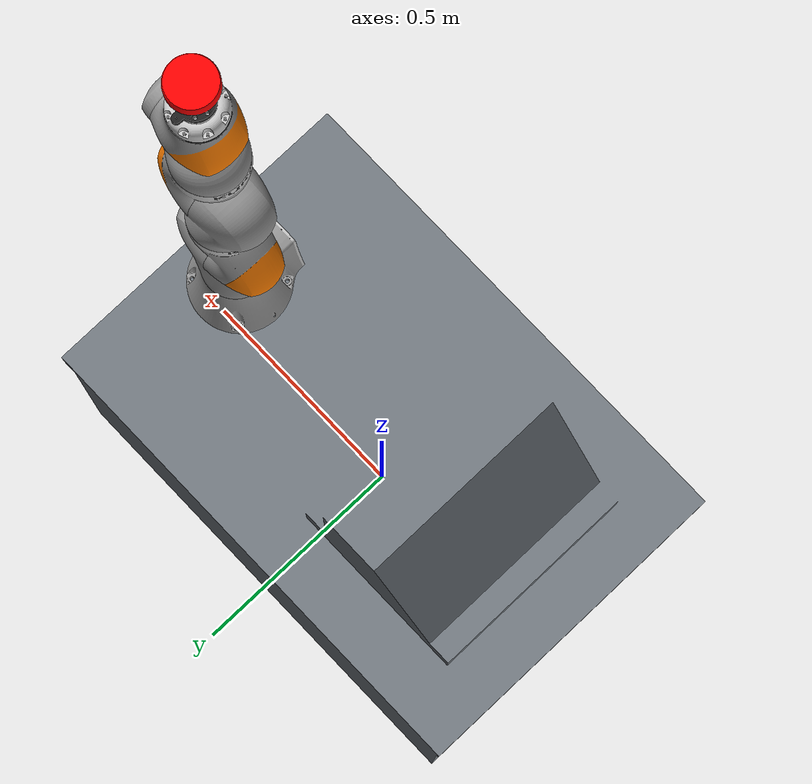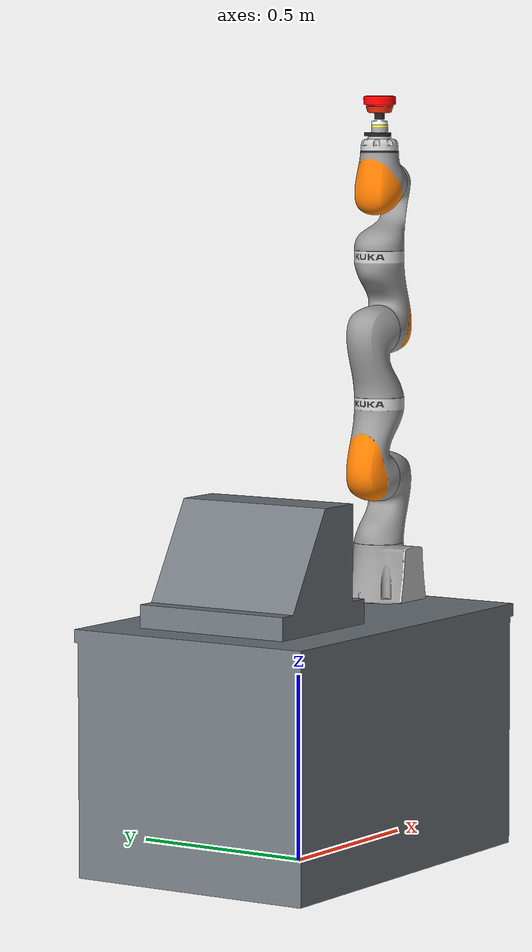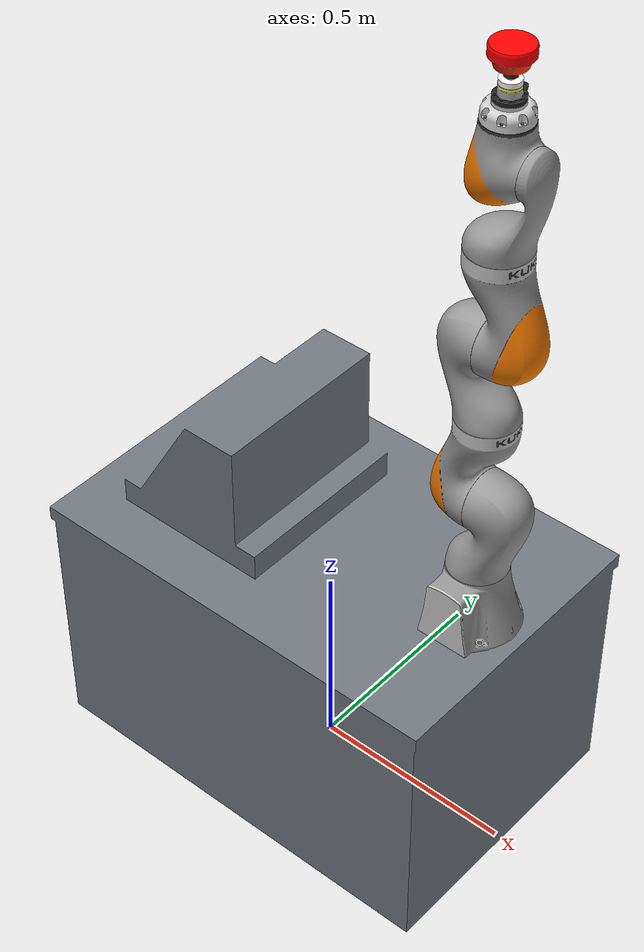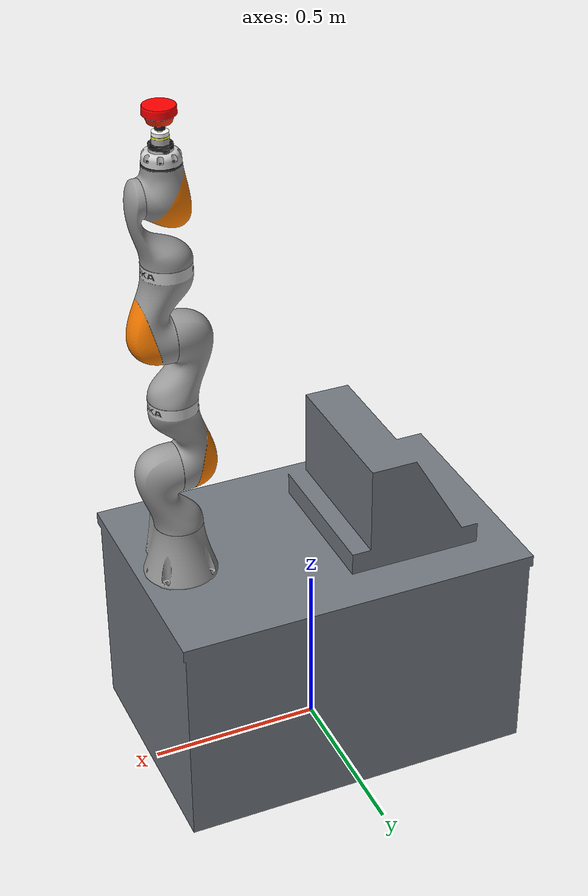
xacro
<?xml version="1.0" ?>
<robot name="iiwa7" xmlns:xacro="http://www.ros.org/wiki/xacro">

    <!-- caja, pasar a primitiva para la colision? ahorra computo creo-->
    <xacro:property name="base_mass" value="40.0" />
    <xacro:property name="robot_offset_x" value="0.40" />
    <xacro:property name="robot_offset_y" value="0.0" />
    <xacro:property name="base_ixx" value="5.333" />
    <xacro:property name="base_iyy" value="5.600" />
    <xacro:property name="base_izz" value="5.467" />

    <xacro:include
        filename="$(find lbr_description)/urdf/iiwa7/iiwa7.urdf.xacro"
    />
    <xacro:include filename="$(find lbr_description)/gazebo/lbr_gazebo.xacro" />
    <xacro:include
        filename="$(find lbr_description)/ros2_control/lbr_system_interface.xacro"
    />
    <xacro:include
        filename="$(find lbr_description)/models/ft_sensor/real_ft_sensor_macro.xacro"
    />
    <xacro:include filename="$(find lbr_description)/models/tool/tool.xacro" />

    <xacro:arg name="robot_name" default="lbr" />
    <xacro:arg name="mode" default="mock" />
    <xacro:arg
        name="joint_limits_path"
        default="$(find lbr_description)/urdf/iiwa7/joint_limits.yaml"
    />
    <xacro:arg
        name="system_config_path"
        default="$(find lbr_description)/ros2_control/lbr_system_config.yaml"
    />
    <xacro:arg
        name="initial_joint_positions_path"
        default="$(find lbr_description)/ros2_control/initial_joint_positions.yaml"
    />

    <xacro:macro
        name="ft_gazebo_plugin"
        params="ft_joint_name topic_name update_rate:='1000' noise_stddev_force:='0.01' noise_stddev_torque:='0.001'"
    >
        <gazebo reference="${ft_joint_name}">
            <preserveFixedJoint>true</preserveFixedJoint>
            <sensor name="ft_sensor" type="force_torque">
                <always_on>true</always_on>
                <update_rate>${update_rate}</update_rate>
                <visualize>false</visualize>
                <force_torque>
                    <frame>child</frame>
                    <measure_direction>child_to_parent</measure_direction>
                    <force>
                        <x><noise type="gaussian"><mean>0.0</mean><stddev
                                >${noise_stddev_force}</stddev></noise></x>
                        <y><noise type="gaussian"><mean>0.0</mean><stddev
                                >${noise_stddev_force}</stddev></noise></y>
                        <z><noise type="gaussian"><mean>0.0</mean><stddev
                                >${noise_stddev_force}</stddev></noise></z>
                    </force>
                    <torque>
                        <x><noise type="gaussian"><mean>0.0</mean><stddev
                                >${noise_stddev_torque}</stddev></noise></x>
                        <y><noise type="gaussian"><mean>0.0</mean><stddev
                                >${noise_stddev_torque}</stddev></noise></y>
                        <z><noise type="gaussian"><mean>0.0</mean><stddev
                                >${noise_stddev_torque}</stddev></noise></z>
                    </torque>
                </force_torque>
                <topic>${topic_name}</topic>
                <plugin
                    filename="gz-sim-forcetorque-system"
                    name="gz::sim::systems::ForceTorque"
                />
            </sensor>
        </gazebo>
    </xacro:macro>

    <link name="world" />

    <joint name="$(arg robot_name)_world_base_joint" type="fixed">
        <parent link="world" />
        <child link="$(arg robot_name)_base_link" />
        <origin xyz="0 0 0.660" rpy="0 0 0" />
    </joint>

    <link name="$(arg robot_name)_base_link">
        <inertial>
            <origin xyz="0 0 0" rpy="0 0 0" />
            <mass value="${base_mass}" />
            <inertia
                ixx="${base_ixx}"
                ixy="0.0"
                ixz="0.0"
                iyy="${base_iyy}"
                iyz="0.0"
                izz="${base_izz}"
            />
        </inertial>
        <visual>
            <origin xyz="0 0 0" rpy="0 0 0" />
            <geometry>
                <mesh
                    filename="package://lbr_description/meshes/iiwa7/carrito_azul/Cuerpo_carro_1.dae"
                />
            </geometry>
        </visual>
        <!-- caja simplificada para tratar de optimizar el codigo -->
        <!-- colisión de pantalla movida al modelo independiente screen_ghost -->
    </link>

    <joint name="$(arg robot_name)_base_robot_joint" type="fixed">
        <parent link="$(arg robot_name)_base_link" />
        <child link="$(arg robot_name)_link_0" />
        <origin xyz="${robot_offset_x} ${robot_offset_y} 0" rpy="0 0 ${pi/2}" />
    </joint>

    <xacro:lbr_gazebo robot_name="$(arg robot_name)" />

    <xacro:lbr_system_interface
        robot_name="$(arg robot_name)"
        mode="$(arg mode)"
        system_config_path="$(arg system_config_path)"
        initial_joint_positions_path="$(arg initial_joint_positions_path)"
    />

    <xacro:iiwa7
        robot_name="$(arg robot_name)"
        joint_limits_path="$(arg joint_limits_path)"
    />

    <!-- cadena: link_7 → brida_cam → ft45 → brida_ft → tool_body → sponge = TCP -->

    <xacro:brida_cam parent="$(arg robot_name)_link_7" name="brida_cam">
        <origin xyz="0 0 0.035" rpy="0 0 0" />
    </xacro:brida_cam>

    <xacro:ft45 parent="brida_cam_tip" name="ft45">
        <origin xyz="0 0 0" rpy="0 0 ${pi}" />
    </xacro:ft45>

    <!-- plugin FT sobre joint: brida_cam_tip_ft45_base_joint -->
    <xacro:ft_gazebo_plugin
        ft_joint_name="brida_cam_tip_ft45_base_joint"
        topic_name="ft_sensor/wrench"
        update_rate="200"
    /> <!-- bajado la frecuencia de actualizacion para optimizar, sin cambios -->

    <xacro:brida_ft parent="ft45_tip" name="brida_ft">
        <origin xyz="0 0 0" rpy="0 0 0" />
    </xacro:brida_ft>

    <xacro:repair_tool_iiwa name="tool_body" parent="brida_ft_tip">
        <origin xyz="0 0 0" rpy="0 0 0" />
    </xacro:repair_tool_iiwa>

    <xacro:repair_sponge_red name="tool" parent="tool_body_tip">
        <origin xyz="0 0 0" rpy="0 0 ${pi}" />
    </xacro:repair_sponge_red>

    <joint name="$(arg robot_name)_joint_ee" type="fixed">
        <parent link="tool_tip" />
        <child link="$(arg robot_name)_link_ee" />
        <origin xyz="0 0 0" rpy="0 0 0" />
    </joint>

    <link name="$(arg robot_name)_link_ee">
    </link>

    <!-- Brida cámara (extremo link_7) -->
    <gazebo reference="brida_cam_base">
        <kp>100000.0</kp>
        <kd>100.0</kd>
        <mu1>0.5</mu1>
        <mu2>0.3</mu2>
    </gazebo>

    <!-- Sensor FT45 -->
    <gazebo reference="ft45_base">
        <kp>100000.0</kp>
        <kd>100.0</kd>
        <mu1>0.5</mu1>
        <mu2>0.3</mu2>
    </gazebo>

    <!-- Brida FT -->
    <gazebo reference="brida_ft_base">
        <kp>100000.0</kp>
        <kd>100.0</kd>
        <mu1>0.5</mu1>
        <mu2>0.3</mu2>
    </gazebo>

    <!-- Tool body (base de la esponja) -->
    <gazebo reference="tool_body_base">
        <kp>100000.0</kp>
        <kd>100.0</kd>
        <mu1>0.5</mu1>
        <mu2>0.3</mu2>
    </gazebo>

    <!-- Esponja (tool): material blando, kp/kd más bajos para simular deformabilidad -->
    <gazebo reference="tool_base">
        <provideFeedback>true</provideFeedback>
        <kp>5000.0</kp>            <!-- stiffness bajo = esponja blanda -->
        <kd>50.0</kd>              <!-- damping moderado -->
        <mu1>1.0</mu1>             <!-- fricción alta esponja-pantalla -->
        <mu2>0.8</mu2>
        <maxVel>0.01</maxVel>
        <minDepth>0.0001</minDepth>
        <maxContacts>6</maxContacts>
    </gazebo>

</robot>

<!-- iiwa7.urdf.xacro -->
<robot xmlns:xacro="http://www.ros.org/wiki/xacro">
    <!-- robot as extracted via https://github.com/syuntoku14/fusion2urdf -->
    <xacro:macro
        name="iiwa7"
        params="robot_name:=^|lbr joint_limits_path:=^|'$(find lbr_description)/urdf/iiwa7/joint_limits.yaml'"
    >

        <!-- load joint limits via yaml -->
        <xacro:property
            name="joint_limits"
            value="${xacro.load_yaml(joint_limits_path)}"
        />

        <!-- constants -->
        <xacro:property name="PI" value="3.1415926535897931" />
        <xacro:property name="joint_damping" value="10.0" />
        <xacro:property name="joint_friction" value="0.1" />

        <!-- links and joints -->
        <link name="${robot_name}_link_0">
            <inertial>
                <origin rpy="0 0 0" xyz="-0.012857 0.0 0.069964" />
                <mass value="4.855658" />
                <inertia
                    ixx="0.017839"
                    ixy="0.0"
                    ixz="0.000781"
                    iyy="0.022294"
                    iyz="0.0"
                    izz="0.021334"
                />
            </inertial>
            <visual>
                <origin rpy="0 0 0" xyz="0 0 0" />
                <geometry>
                    <mesh
                        filename="package://lbr_description/meshes/iiwa7/visual/link_0.dae"
                    />
                </geometry>
            </visual>
            <collision>
                <origin rpy="0 0 0" xyz="0 0 0" />
                <geometry>
                    <mesh
                        filename="package://lbr_description/meshes/iiwa7/collision/link_0.stl"
                    />
                </geometry>
            </collision>
        </link>

        <joint name="${robot_name}_A1" type="revolute">
            <origin rpy="0 0 0" xyz="0.0 0.0 0.1475" />
            <parent link="${robot_name}_link_0" />
            <child link="${robot_name}_link_1" />
            <axis xyz="0.0 0.0 1.0" />
            <limit
                effort="${joint_limits['A1']['effort']}"
                lower="${joint_limits['A1']['lower'] * PI / 180}"
                upper="${joint_limits['A1']['upper'] * PI / 180}"
                velocity="${joint_limits['A1']['velocity'] * PI / 180}"
            />
            <safety_controller
                soft_lower_limit="${joint_limits['A1']['lower'] * PI / 180}"
                soft_upper_limit="${joint_limits['A1']['upper'] * PI / 180}"
                k_position="${joint_limits['A1']['velocity'] / joint_limits['A1']['safety_position_margin']}"
                k_velocity="${joint_limits['A1']['k_velocity']}"
            />
            <dynamics damping="${joint_damping}" friction="${joint_friction}" />
        </joint>

        <link name="${robot_name}_link_1">
            <inertial>
                <origin rpy="0 0 0" xyz="0.0 -0.034819 0.123299" />
                <mass value="3.394011" />
                <inertia
                    ixx="0.021383"
                    ixy="0.0"
                    ixz="0.0"
                    iyy="0.020403"
                    iyz="0.003797"
                    izz="0.007563"
                />
            </inertial>
            <visual>
                <origin rpy="0 0 0" xyz="0.0 0.0 -0.1475" />
                <geometry>
                    <mesh
                        filename="package://lbr_description/meshes/iiwa7/visual/link_1.dae"
                    />
                </geometry>
            </visual>
            <collision>
                <origin rpy="0 0 0" xyz="0.0 0.0 -0.1475" />
                <geometry>
                    <mesh
                        filename="package://lbr_description/meshes/iiwa7/collision/link_1.stl"
                    />
                </geometry>
            </collision>
        </link>

        <joint name="${robot_name}_A2" type="revolute">
            <origin rpy="0 0 0" xyz="0.0 -0.0105 0.1925" />
            <parent link="${robot_name}_link_1" />
            <child link="${robot_name}_link_2" />
            <axis xyz="0.0 1.0 0.0" />
            <limit
                effort="${joint_limits['A2']['effort']}"
                lower="${joint_limits['A2']['lower'] * PI / 180}"
                upper="${joint_limits['A2']['upper'] * PI / 180}"
                velocity="${joint_limits['A2']['velocity'] * PI / 180}"
            />
            <safety_controller
                soft_lower_limit="${joint_limits['A2']['lower'] * PI / 180}"
                soft_upper_limit="${joint_limits['A2']['upper'] * PI / 180}"
                k_position="${joint_limits['A2']['velocity'] / joint_limits['A2']['safety_position_margin']}"
                k_velocity="${joint_limits['A2']['k_velocity']}"
            />
            <dynamics damping="${joint_damping}" friction="${joint_friction}" />
        </joint>

        <link name="${robot_name}_link_2">
            <inertial>
                <origin rpy="0 0 0" xyz="0.0 0.039793 0.086944" />
                <mass value="4.031991" />
                <inertia
                    ixx="0.031697"
                    ixy="0.0"
                    ixz="0.0"
                    iyy="0.03008"
                    iyz="0.005889"
                    izz="0.009666"
                />
            </inertial>
            <visual>
                <origin rpy="0 0 0" xyz="0.0 0.0105 -0.34" />
                <geometry>
                    <mesh
                        filename="package://lbr_description/meshes/iiwa7/visual/link_2.dae"
                    />
                </geometry>
            </visual>
            <collision>
                <origin rpy="0 0 0" xyz="0.0 0.0105 -0.34" />
                <geometry>
                    <mesh
                        filename="package://lbr_description/meshes/iiwa7/collision/link_2.stl"
                    />
                </geometry>
            </collision>
        </link>

        <joint name="${robot_name}_A3" type="revolute">
            <origin rpy="0 0 0" xyz="0.0 0.0105 0.2075" />
            <parent link="${robot_name}_link_2" />
            <child link="${robot_name}_link_3" />
            <axis xyz="0.0 0.0 1.0" />
            <limit
                effort="${joint_limits['A3']['effort']}"
                lower="${joint_limits['A3']['lower'] * PI / 180}"
                upper="${joint_limits['A3']['upper'] * PI / 180}"
                velocity="${joint_limits['A3']['velocity'] * PI / 180}"
            />
            <safety_controller
                soft_lower_limit="${joint_limits['A3']['lower'] * PI / 180}"
                soft_upper_limit="${joint_limits['A3']['upper'] * PI / 180}"
                k_position="${joint_limits['A3']['velocity'] / joint_limits['A3']['safety_position_margin']}"
                k_velocity="${joint_limits['A3']['k_velocity']}"
            />
            <dynamics damping="${joint_damping}" friction="${joint_friction}" />
        </joint>

        <link name="${robot_name}_link_3">
            <inertial>
                <origin rpy="0 0 0" xyz="0.0 0.034819 0.123299" />
                <mass value="3.394011" />
                <inertia
                    ixx="0.021383"
                    ixy="0.0"
                    ixz="0.0"
                    iyy="0.020403"
                    iyz="-0.003797"
                    izz="0.007563"
                />
            </inertial>
            <visual>
                <origin rpy="0 0 0" xyz="0.0 0.0 -0.5475" />
                <geometry>
                    <mesh
                        filename="package://lbr_description/meshes/iiwa7/visual/link_3.dae"
                    />
                </geometry>
            </visual>
            <collision>
                <origin rpy="0 0 0" xyz="0.0 0.0 -0.5475" />
                <geometry>
                    <mesh
                        filename="package://lbr_description/meshes/iiwa7/collision/link_3.stl"
                    />
                </geometry>
            </collision>
        </link>

        <joint name="${robot_name}_A4" type="revolute">
            <origin rpy="0 0 0" xyz="0.0 0.0105 0.1925" />
            <parent link="${robot_name}_link_3" />
            <child link="${robot_name}_link_4" />
            <axis xyz="0.0 -1.0 0.0" />
            <limit
                effort="${joint_limits['A4']['effort']}"
                lower="${joint_limits['A4']['lower'] * PI / 180}"
                upper="${joint_limits['A4']['upper'] * PI / 180}"
                velocity="${joint_limits['A4']['velocity'] * PI / 180}"
            />
            <safety_controller
                soft_lower_limit="${joint_limits['A4']['lower'] * PI / 180}"
                soft_upper_limit="${joint_limits['A4']['upper'] * PI / 180}"
                k_position="${joint_limits['A4']['velocity'] / joint_limits['A4']['safety_position_margin']}"
                k_velocity="${joint_limits['A4']['k_velocity']}"
            />
            <dynamics damping="${joint_damping}" friction="${joint_friction}" />
        </joint>

        <link name="${robot_name}_link_4">
            <inertial>
                <origin rpy="0 0 0" xyz="0.0 -0.039793 0.086944" />
                <mass value="4.031989" />
                <inertia
                    ixx="0.031695"
                    ixy="0.0"
                    ixz="0.0"
                    iyy="0.030079"
                    iyz="-0.005889"
                    izz="0.009665"
                />
            </inertial>
            <visual>
                <origin rpy="0 0 0" xyz="0.0 -0.0105 -0.74" />
                <geometry>
                    <mesh
                        filename="package://lbr_description/meshes/iiwa7/visual/link_4.dae"
                    />
                </geometry>
            </visual>
            <collision>
                <origin rpy="0 0 0" xyz="0.0 -0.0105 -0.74" />
                <geometry>
                    <mesh
                        filename="package://lbr_description/meshes/iiwa7/collision/link_4.stl"
                    />
                </geometry>
            </collision>
        </link>

        <joint name="${robot_name}_A5" type="revolute">
            <origin rpy="0 0 0" xyz="0.0 -0.0105 0.2075" />
            <parent link="${robot_name}_link_4" />
            <child link="${robot_name}_link_5" />
            <axis xyz="0.0 0.0 1.0" />
            <limit
                effort="${joint_limits['A5']['effort']}"
                lower="${joint_limits['A5']['lower'] * PI / 180}"
                upper="${joint_limits['A5']['upper'] * PI / 180}"
                velocity="${joint_limits['A5']['velocity'] * PI / 180}"
            />
            <safety_controller
                soft_lower_limit="${joint_limits['A5']['lower'] * PI / 180}"
                soft_upper_limit="${joint_limits['A5']['upper'] * PI / 180}"
                k_position="${joint_limits['A5']['velocity'] / joint_limits['A5']['safety_position_margin']}"
                k_velocity="${joint_limits['A5']['k_velocity']}"
            />
            <dynamics damping="${joint_damping}" friction="${joint_friction}" />
        </joint>

        <link name="${robot_name}_link_5">
            <inertial>
                <origin rpy="0 0 0" xyz="0.0 -0.029824 0.076267" />
                <mass value="1.529239" />
                <inertia
                    ixx="0.008485"
                    ixy="0.0"
                    ixz="0.0"
                    iyy="0.007136"
                    iyz="0.002806"
                    izz="0.003848"
                />
            </inertial>
            <visual>
                <origin rpy="0 0 0" xyz="0.0 0.0 -0.9475" />
                <geometry>
                    <mesh
                        filename="package://lbr_description/meshes/iiwa7/visual/link_5.dae"
                    />
                </geometry>
            </visual>
            <collision>
                <origin rpy="0 0 0" xyz="0.0 0.0 -0.9475" />
                <geometry>
                    <mesh
                        filename="package://lbr_description/meshes/iiwa7/collision/link_5.stl"
                    />
                </geometry>
            </collision>
        </link>

        <joint name="${robot_name}_A6" type="revolute">
            <origin rpy="0 0 0" xyz="0.0 -0.0707 0.1925" />
            <parent link="${robot_name}_link_5" />
            <child link="${robot_name}_link_6" />
            <axis xyz="0.0 1.0 0.0" />
            <limit
                effort="${joint_limits['A6']['effort']}"
                lower="${joint_limits['A6']['lower'] * PI / 180}"
                upper="${joint_limits['A6']['upper'] * PI / 180}"
                velocity="${joint_limits['A6']['velocity'] * PI / 180}"
            />
            <safety_controller
                soft_lower_limit="${joint_limits['A6']['lower'] * PI / 180}"
                soft_upper_limit="${joint_limits['A6']['upper'] * PI / 180}"
                k_position="${joint_limits['A6']['velocity'] / joint_limits['A6']['safety_position_margin']}"
                k_velocity="${joint_limits['A6']['k_velocity']}"
            />
            <dynamics damping="${joint_damping}" friction="${joint_friction}" />
        </joint>

        <link name="${robot_name}_link_6">
            <inertial>
                <origin rpy="0 0 0" xyz="0.0 0.07102 0.00495" />
                <mass value="2.403626" />
                <inertia
                    ixx="0.007067"
                    ixy="0.0"
                    ixz="0.0"
                    iyy="0.006804"
                    iyz="0.000311"
                    izz="0.004629"
                />
            </inertial>
            <visual>
                <origin rpy="0 0 0" xyz="0.0 0.0707 -1.14" />
                <geometry>
                    <mesh
                        filename="package://lbr_description/meshes/iiwa7/visual/link_6.dae"
                    />
                </geometry>
            </visual>
            <collision>
                <origin rpy="0 0 0" xyz="0.0 0.0707 -1.14" />
                <geometry>
                    <mesh
                        filename="package://lbr_description/meshes/iiwa7/collision/link_6.stl"
                    />
                </geometry>
            </collision>
        </link>

        <joint name="${robot_name}_A7" type="revolute">
            <origin rpy="0 0 0" xyz="0.0 0.0707 0.091" />
            <parent link="${robot_name}_link_6" />
            <child link="${robot_name}_link_7" />
            <axis xyz="0.0 0.0 1.0" />
            <limit
                effort="${joint_limits['A7']['effort']}"
                lower="${joint_limits['A7']['lower'] * PI / 180}"
                upper="${joint_limits['A7']['upper'] * PI / 180}"
                velocity="${joint_limits['A7']['velocity'] * PI / 180}"
            />
            <safety_controller
                soft_lower_limit="${joint_limits['A7']['lower'] * PI / 180}"
                soft_upper_limit="${joint_limits['A7']['upper'] * PI / 180}"
                k_position="${joint_limits['A7']['velocity'] / joint_limits['A7']['safety_position_margin']}"
                k_velocity="${joint_limits['A7']['k_velocity']}"
            />
            <dynamics damping="${joint_damping}" friction="${joint_friction}" />
        </joint>

        <link name="${robot_name}_link_7">
            <inertial>
                <origin rpy="0 0 0" xyz="3.0000e-06 -2.0000e-06 1.3782e-02" />
                <mass value="0.259474" />
                <inertia
                    ixx="0.000171"
                    ixy="0.0"
                    ixz="0.0"
                    iyy="0.000171"
                    iyz="0.0"
                    izz="0.000299"
                />
            </inertial>
            <visual>
                <origin rpy="0 0 0" xyz="0.0 0.0 -1.231" />
                <geometry>
                    <mesh
                        filename="package://lbr_description/meshes/iiwa7/visual/link_7.dae"
                    />
                </geometry>
            </visual>
            <collision>
                <origin rpy="0 0 0" xyz="0.0 0.0 -1.231" />
                <geometry>
                    <mesh
                        filename="package://lbr_description/meshes/iiwa7/collision/link_7.stl"
                    />
                </geometry>
            </collision>
        </link>

    </xacro:macro>
</robot>

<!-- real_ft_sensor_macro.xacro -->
<robot name="ft_sensor_OnRobot" xmlns:xacro="http://ros.org/wiki/xacro">

	<!-- Common tools: PI, inertias of a cuboid and cylinder -->
	<xacro:property name="M_PI" value="3.1415926535897931"/>
	<xacro:macro name="cuboid_inertia_def" params="width height length mass">
	<inertia ixx="${mass * (height * height + length * length) / 12}"
		 iyy="${mass * (width * width + length * length) / 12}"
		 izz="${mass * (width * width + height * height) / 12}"
		 ixy="0" iyz="0" ixz="0"/>
	</xacro:macro>
	<xacro:macro name="cylinder_inertia_def" params="radius length mass">
	<inertia ixx="${mass * (3 * radius * radius + length * length) / 12}"
		     iyy="${mass * (3 * radius * radius + length * length) / 12}"
		     izz="${mass * radius* radius / 2}"
		     ixy="0" iyz="0" ixz="0"/>
	</xacro:macro>

    <xacro:macro name="brida_cam" params="parent name *origin">

    <joint name="${parent}_${name}_base_joint" type="fixed">
      <xacro:insert_block name="origin"/>
      <parent link="${parent}"/>
      <child link="${name}_base"/>
    </joint>

    <link name="${name}_base">
	<inertial>
		<mass value="0.05"/>
		<origin xyz="0 0 0.005"  />
		<xacro:cylinder_inertia_def radius="0.031" length="0.01" mass="0.05"/>
	</inertial>
	<visual>
		<origin xyz="0 0 0" rpy="0 0 0"/>
		<geometry>
			<mesh filename="package://lbr_description/models/brida/meshes/visual/brida_cam.dae"/>
		</geometry>
	</visual>
	<collision>
		<origin xyz="0 0 0" rpy="0 0 0"/>
		<geometry>
		<!--- ahora usa un cilindro primitivo para optimizar los golpes y el calculo de colisiones -->
			<cylinder radius="0.031" length="0.01"/>
		</geometry>
	</collision>
    </link>

    <link name="${name}_tip"/>

    <joint name="${parent}_${name}_tip_joint" type="fixed">
      <origin xyz="0 0 0.01" rpy="0 0 0"/>
      <parent link="${name}_base"/>
      <child link="${name}_tip"/>
    </joint>

    </xacro:macro>

    <xacro:macro name="ft45" params="parent name *origin">

    <joint name="${parent}_${name}_base_joint" type="fixed">
      <xacro:insert_block name="origin"/>
      <parent link="${parent}"/>
      <child link="${name}_base"/>
    </joint>

    <link name="${name}_base">
	<inertial>
		<mass value="0.15"/>
		<origin xyz="0 0 0.0105"  />
		<xacro:cylinder_inertia_def radius="0.0225" length="0.021" mass="0.15"/>
	</inertial>
	<visual>
		<origin xyz="0 0 0" rpy="0 0 0"/>
		<geometry>
			<mesh filename="package://lbr_description/models/ft_sensor/meshes/visual/FT45.dae"/>
		</geometry>
	</visual>
	<collision>
		<origin xyz="0 0 0" rpy="0 0 0"/>
		<geometry>
		<cylinder radius="0.0225" length="0.021"/>
		<!--- la parte de arriba ya han llegado a usar formas primitivas para ahorrar CPU -->
		</geometry>
	</collision>
    </link>

    <link name="${name}_tip"/>

    <joint name="${parent}_${name}_tip_joint" type="fixed">
      <origin xyz="0 0 0.021" rpy="0 0 0"/>
      <parent link="${name}_base"/>
      <child link="${name}_tip"/>
    </joint>

    </xacro:macro>

    <xacro:macro name="brida_ft" params="parent name *origin">

    <joint name="${parent}_${name}_base_joint" type="fixed">
      <xacro:insert_block name="origin"/>
      <parent link="${parent}"/>
      <child link="${name}_base"/>
    </joint>

    <link name="${name}_base">
	<inertial>
		<mass value="0.05"/>
		<origin xyz="0 0 0.005"  />
		<xacro:cylinder_inertia_def radius="0.022" length="0.01" mass="0.05"/>
	</inertial>
	<visual>
		<origin xyz="0 0 0" rpy="0 0 0"/>
		<geometry>
			<mesh filename="package://lbr_description/models/brida/meshes/visual/brida_ft.dae"/>
		</geometry>
	</visual>
	<collision>
		<origin xyz="0 0 0" rpy="0 0 0"/>
		<geometry>
		    <cylinder radius="0.022" length="0.01"/>
		</geometry>
	</collision>
    </link>

    <link name="${name}_tip"/>

    <joint name="${parent}_${name}_tip_joint" type="fixed">
      <origin xyz="0 0 0.015" rpy="0 0 0"/>
      <parent link="${name}_base"/>
      <child link="${name}_tip"/>
    </joint>

    </xacro:macro>

</robot>

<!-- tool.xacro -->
<robot xmlns:xacro="http://ros.org/wiki/xacro">

    <xacro:macro name="repair_tool" params="name parent *origin">

      <joint name="${name}_base_joint" type="fixed">
        <xacro:insert_block name="origin" />
        <parent link="${parent}"/>
        <child link="${name}_base"/>
      </joint>

      <link name="${name}_base">
        <inertial>
          <mass value="0.8" />
          <origin xyz="-0.015887 0 0.036837" rpy="0 0 0" />
          <inertia ixx="0.001143" ixy="-0.0" ixz="-0.000433" iyy="0.002044" iyz="-0.0" izz="0.001124" />
        </inertial>
        <visual>
          <origin xyz="0 0 0" rpy="0 0 0"/>
          <geometry>
                  <mesh filename="package://lbr_description/models/tool/meshes/visual/Airos150_red_sponge.dae"/>
          </geometry>
        </visual>
        <collision>
          <origin xyz="0 0 0" rpy="0 0 0" />
          <geometry>
            <mesh filename="package://lbr_description/models/tool/meshes/collision/Airos150_red_sponge.stl"/>
          </geometry>
        </collision>
      </link>

    </xacro:macro>

    <xacro:macro name="conditioning_tool" params="name parent *origin">

      <joint name="${name}_brida_joint" type="fixed">
        <xacro:insert_block name="origin" />
        <parent link="${parent}"/>
        <child link="${name}_base"/>
      </joint>

      <link name="${name}_base">
        <inertial>
          <mass value="0.110" />
          <origin xyz="-0.009159 -0.01474 0.093085" rpy="0 0 0" />
          <inertia ixx="0.002444" ixy="-0.000123" ixz="-0.000103" iyy="0.003024" iyz="-5.1e-05" izz="0.001237" />
        </inertial>
        <visual>
          <origin xyz="0 0 0" rpy="0 0 0"/>
          <geometry>
                  <mesh filename="package://lbr_description/models/tool/meshes/visual/Airos350CV_brida_red_sponge.dae"/>
          </geometry>
        </visual>
        <collision>
          <origin xyz="0 0 0" rpy="0 0 0" />
          <geometry>
            <mesh filename="package://lbr_description/models/tool/meshes/collision/Airos350CV_brida_red_sponge.stl"/>
          </geometry>
        </collision>
      </link>

    </xacro:macro>

    <xacro:macro name="repair_tool_iiwa" params="name parent *origin">

      <joint name="${parent}_${name}_joint" type="fixed">
        <xacro:insert_block name="origin" />
        <parent link="${parent}"/>
        <child link="${name}_base"/>
      </joint>

      <link name="${name}_base">
        <inertial>
          <mass value="0.110" />
          <origin xyz="-0.009159 -0.01474 0.093085" rpy="0 0 0" />
          <inertia ixx="0.002444" ixy="-0.000123" ixz="-0.000103" iyy="0.003024" iyz="-5.1e-05" izz="0.001237" />
        </inertial>
        <visual>
          <origin xyz="0 0 0" rpy="0 0 0"/>
          <geometry>
            <mesh filename="package://lbr_description/models/tool/meshes/visual/tool_base.dae"/>
          </geometry>
        </visual>
        <collision>
          <origin xyz="0 0 0.015" rpy="0 0 0" />
          <geometry>
            <cylinder radius="0.03" length="0.03" />
          </geometry>
        </collision>
      </link>

      <link name="${name}_tip"/>

      <joint name="${parent}_${name}_tip_joint" type="fixed">
        <origin xyz="0 0 0.036" rpy="0 0 0"/>
        <parent link="${name}_base"/>
        <child link="${name}_tip"/>
      </joint>

    </xacro:macro>

    <xacro:macro name="repair_sponge_red" params="name parent *origin
                 layer_radius:=0.045
                 layer_length:=0.006667
                 layer1_stiffness:=4000.0 layer1_damping:=6.0 layer1_max_compression:=0.001
                 layer2_stiffness:=2500.0 layer2_damping:=4.0 layer2_max_compression:=0.0015
                 layer3_stiffness:=1200.0 layer3_damping:=3.0 layer3_max_compression:=0.002">

      <joint name="${name}_sponge_joint" type="fixed">
        <xacro:insert_block name="origin" />
        <parent link="${parent}"/>
        <child link="${name}_base"/>
      </joint>

      <link name="${name}_base">
        <inertial>
          <mass value="0.110" />
          <origin xyz="-0.009159 -0.01474 0.093085" rpy="0 0 0" />
          <inertia ixx="0.002444" ixy="-0.000123" ixz="-0.000103" iyy="0.003024" iyz="-5.1e-05" izz="0.001237" />
        </inertial>
        <visual>
          <origin xyz="0 0 0" rpy="0 0 0"/>
          <geometry>
            <mesh filename="package://lbr_description/models/tool/meshes/visual/tool_sponge_red.dae"/>
          </geometry>
        </visual>
      </link>

      <joint name="${name}_layer1_joint" type="prismatic">
        <origin xyz="0 0 0.005" rpy="0 0 0" />
        <parent link="${name}_base"/>
        <child link="${name}_layer1"/>
        <axis xyz="0 0 1" />
        <limit lower="-${layer1_max_compression}" upper="0" effort="50" velocity="0.5" />
        <dynamics damping="${layer1_damping}" spring_stiffness="${layer1_stiffness}" spring_reference="0.0" />
      </joint>

      <link name="${name}_layer1">
        <inertial>
          <mass value="0.0075" />
          <origin xyz="0 0 ${layer_length/2}" rpy="0 0 0" />
          <inertia ixx="7e-05" ixy="0.0" ixz="0.0" iyy="7e-05" iyz="0.0" izz="7e-05" />
        </inertial>
        <collision>
          <origin xyz="0 0 ${layer_length/2}" rpy="0 0 0" />
          <geometry>
            <cylinder radius="${layer_radius}" length="${layer_length}" />
          </geometry>
        </collision>
      </link>

      <joint name="${name}_layer2_joint" type="prismatic">
        <origin xyz="0 0 ${layer_length}" rpy="0 0 0" />
        <parent link="${name}_layer1"/>
        <child link="${name}_layer2"/>
        <axis xyz="0 0 1" />
        <limit lower="-${layer2_max_compression}" upper="0" effort="50" velocity="0.5" />
        <dynamics damping="${layer2_damping}" spring_stiffness="${layer2_stiffness}" spring_reference="0.0" />
      </joint>

      <link name="${name}_layer2">
        <inertial>
          <mass value="0.0075" />
          <origin xyz="0 0 ${layer_length/2}" rpy="0 0 0" />
          <inertia ixx="7e-05" ixy="0.0" ixz="0.0" iyy="7e-05" iyz="0.0" izz="7e-05" />
        </inertial>
        <collision>
          <origin xyz="0 0 ${layer_length/2}" rpy="0 0 0" />
          <geometry>
            <cylinder radius="${layer_radius}" length="${layer_length}" />
          </geometry>
        </collision>
      </link>

      <joint name="${name}_layer3_joint" type="prismatic">
        <origin xyz="0 0 ${layer_length}" rpy="0 0 0" />
        <parent link="${name}_layer2"/>
        <child link="${name}_layer3"/>
        <axis xyz="0 0 1" />
        <limit lower="-${layer3_max_compression}" upper="0" effort="50" velocity="0.5" />
        <dynamics damping="${layer3_damping}" spring_stiffness="${layer3_stiffness}" spring_reference="0.0" />
      </joint>

      <link name="${name}_layer3">
        <inertial>
          <mass value="0.0075" />
          <origin xyz="0 0 ${layer_length/2}" rpy="0 0 0" />
          <inertia ixx="7e-05" ixy="0.0" ixz="0.0" iyy="7e-05" iyz="0.0" izz="7e-05" />
        </inertial>
        <collision>
          <origin xyz="0 0 ${layer_length/2}" rpy="0 0 0" />
          <geometry>
            <cylinder radius="${layer_radius}" length="${layer_length}" />
          </geometry>
        </collision>
      </link>

    <link name="${name}_tip"/>

    <joint name="${parent}_${name}_tip_joint" type="fixed">
      <origin xyz="0 0 0.007867" rpy="0 0 0"/>
      <parent link="${name}_layer3"/>
      <child link="${name}_tip"/>
    </joint>

    </xacro:macro>

    <xacro:macro name="conditioning_tool_iiwa" params="name parent *origin">

      <joint name="${parent}_${name}_joint" type="fixed">
        <xacro:insert_block name="origin" />
        <parent link="${parent}"/>
        <child link="${name}_base"/>
      </joint>

      <link name="${name}_base">
        <inertial>
          <mass value="0.110" />
          <origin xyz="-0.009159 -0.01474 0.093085" rpy="0 0 0" />
          <inertia ixx="0.002444" ixy="-0.000123" ixz="-0.000103" iyy="0.003024" iyz="-5.1e-05" izz="0.001237" />
        </inertial>
        <visual>
          <origin xyz="0 0 0" rpy="0 0 0"/>
          <geometry>
            <mesh filename="package://lbr_description/models/tool/meshes/visual/tool_base.dae"/>
          </geometry>
        </visual>
        <collision>
          <origin xyz="0 0 0" rpy="0 0 0" />
          <geometry>
            <mesh filename="package://lbr_description/models/tool/meshes/collision/tool_base.stl"/>
          </geometry>
        </collision>
      </link>

      <link name="${name}_tip"/>

      <joint name="${robot_name}_tip_joint" type="revolute">
       <origin xyz="0 0 0.036" rpy="0 0 0"/>
       <parent link="${name}_base"/>
       <child link="${name}_tip"/>
       <axis xyz="0.0 0.0 1.0" />
        <limit
                effort="1000000"
                lower="0"
                upper="0"
                velocity="0" />
    </joint>

    </xacro:macro>

    <xacro:macro name="conditioning_sponge_red" params="name parent *origin">

      <joint name="${name}_sponge_joint" type="revolute">
        <xacro:insert_block name="origin" />
        <parent link="${parent}"/>
        <child link="${name}_base"/>
      </joint>

      <link name="${name}_base">
        <inertial>
          <mass value="0.110" />
          <origin xyz="-0.009159 -0.01474 0.093085" rpy="0 0 0" />
          <inertia ixx="0.002444" ixy="-0.000123" ixz="-0.000103" iyy="0.003024" iyz="-5.1e-05" izz="0.001237" />
        </inertial>
        <visual>
          <origin xyz="0 0 0" rpy="0 0 0"/>
          <geometry>
            <mesh filename="package://lbr_description/models/tool/meshes/visual/tool_sponge_red.dae"/>
          </geometry>
        </visual>
        <collision>
          <origin xyz="0 0 0" rpy="0 0 0" />
          <geometry>
            <mesh filename="package://lbr_description/models/tool/meshes/collision/tool_sponge_red.stl"/>
          </geometry>
        </collision>
      </link>

    <link name="${name}_tip"/>

    <joint name="${robot_name}_tip_joint" type="revolute">
      <origin xyz="0 0 0.0262" rpy="0 0 0"/>
      <parent link="${name}_base"/>
      <child link="${name}_tip"/>
      <axis xyz="0.0 0.0 1.0" />
        <limit
                effort="1000000"
                lower="0"
                upper="0"
                velocity="0" />
    </joint>

    </xacro:macro>

    <xacro:macro name="calibration_tool" params="name parent *origin">

      <joint name="${name}_base_joint" type="fixed">
        <xacro:insert_block name="origin" />
        <parent link="${parent}"/>
        <child link="${name}_base"/>
      </joint>

      <link name="${name}_base">
        <inertial>
          <mass value="0.039" />
          <origin xyz="-0.0 0.0 0.0116" rpy="0 0 0" />
          <inertia ixx="0.0001" ixy="-0.0" ixz="0.0" iyy="0.0001" iyz="-0.0" izz="0.0001" />
        </inertial>
        <visual>
          <origin xyz="0 0 0" rpy="0 0 0"/>
          <geometry>
                  <mesh filename="package://lbr_description/models/tool/meshes/visual/Calibration_tool.dae"/>
          </geometry>
        </visual>
        <collision>
          <origin xyz="0 0 0" rpy="0 0 0" />
          <geometry>
            <mesh filename="package://lbr_description/models/tool/meshes/collision/Calibration_tool.stl"/>
          </geometry>
        </collision>
      </link>

    </xacro:macro>

    <xacro:macro name="tool0-tool_tip_dummy" params="name parent *origin">

      <joint name="${parent}-${name}_dummy" type="fixed">
        <xacro:insert_block name="origin" />
        <parent link="${parent}"/>
        <child link="${name}_dummy"/>
      </joint>

      <link name="${name}_dummy" />

    </xacro:macro>

  </robot>
